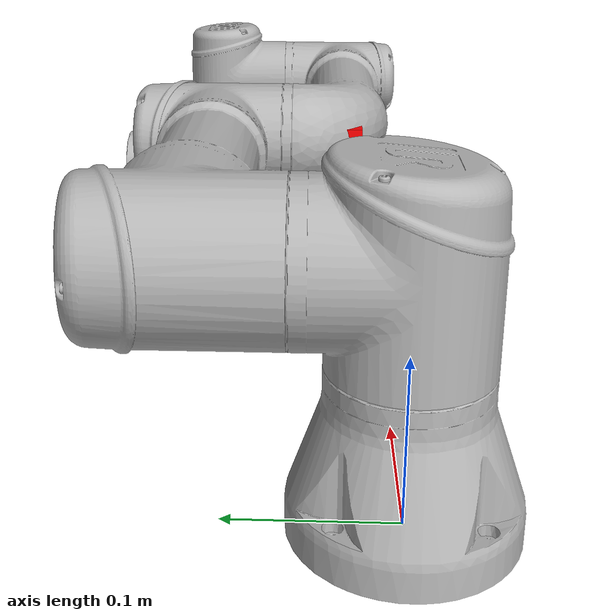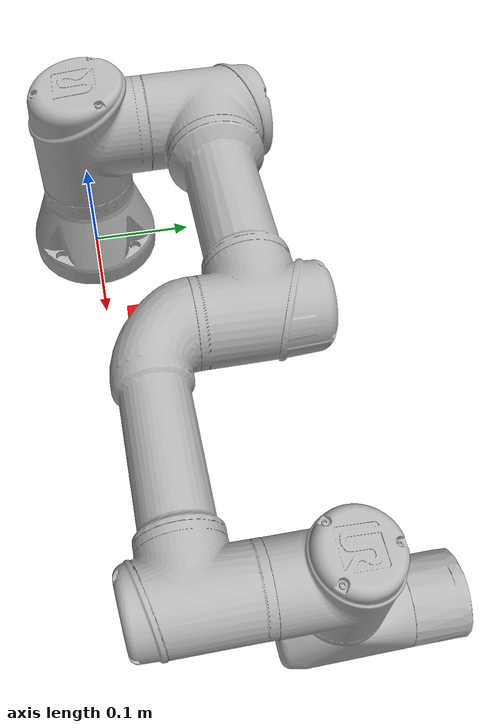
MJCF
<mujoco model="ur3e">
    <compiler angle="radian" meshdir="./mesh/ur3e/collision/" texturedir="./mesh/ur3e/visual/" />

    <size njmax="500" nconmax="100" />
    <option timestep='0.01' gravity='0 0 -9.81'/>
    <default>
        <default class="force-torque">
        <site type="box" size=".01 .01 .02" rgba="1 0 0 1" />
      </default>
    </default>
    <visual>
        <headlight diffuse="0.6 0.6 0.6" ambient="0.3 0.3 0.3" specular="0 0 0" />
        <rgba haze="0.15 0.25 0.35 1" />
        <global offheight="2160" offwidth="3840"/>
        <quality offsamples="8"/>
    </visual>

    <asset>
        <mesh name="base"     file="base.stl" />
        <mesh name="shoulder" file="shoulder.stl" />
        <mesh name="upperarm" file="upperarm.stl" />
        <mesh name="forearm"  file="forearm.stl" />
        <mesh name="wrist1"   file="wrist1.stl" />
        <mesh name="wrist2"   file="wrist2.stl" />
        <mesh name="wrist3"   file="wrist3.stl" />

        <texture type="skybox" builtin="gradient" rgb1="0.3 0.5 0.7" rgb2="0 0 0" width="512" height="3072" />
        <texture type="2d" name="groundplane" builtin="checker" mark="edge" rgb1="0.2 0.3 0.4" rgb2="0.1 0.2 0.3" markrgb="0.8 0.8 0.8" width="300" height="300" />
        <material name="groundplane" texture="groundplane" texuniform="true" texrepeat="5 5" reflectance="0.5" />

    </asset>
    <worldbody>
    <body name="base" pos="0 0 0">
        <geom type="mesh" contype="0" conaffinity="0" group="1" rgba="0.7 0.7 0.7 1" mesh="base" />
        <geom type="mesh" rgba="0.7 0.7 0.7 1" mesh="base" />
        <body name="shoulder_link" pos="0 0 0.152">
            <inertial pos="0 0 0" mass="2" diaginertia="0.00809316 0.00809316 0.005625" />
            <joint name="shoulder_pan_joint" pos="0 0 0" axis="0 0 1" limited="true" range="-3.14159 3.14159" damping="1.0" frictionloss="0.2"/>
            <site name="shoulder_pan_sensor" class="force-torque"/>
            <geom type="mesh" contype="0" conaffinity="0" group="1" rgba="0.7 0.7 0.7 1" mesh="shoulder" />
            <geom type="mesh" rgba="0.7 0.7 0.7 1" mesh="shoulder" />
            <body name="upper_arm_link" pos="0 0.12 0" quat="0.707107 0 0.707107 0">
                <inertial pos="0 0 0.122" mass="3.42" diaginertia="0.0217771 0.0217771 0.00961875" />
                <joint name="shoulder_lift_joint" pos="0 0 0" axis="0 1 0" limited="true" range="-3.14159 3.14159" damping="1.0" frictionloss="0.2"/>
                <site name="shoulder_lift_sensor" class="force-torque"/>
                <geom type="mesh" contype="0" conaffinity="0" group="1" rgba="0.7 0.7 0.7 1" mesh="upperarm" />
                <geom type="mesh" rgba="0.7 0.7 0.7 1" mesh="upperarm" />
                <body name="forearm_link" pos="0 -0.093 0.244">
                    <inertial pos="0 0 0.1065" mass="1.26" diaginertia="0.00653562 0.00653562 0.00354375" />
                    <joint name="elbow_joint" pos="0 0 0" axis="0 1 0" limited="true" range="-3.14159 3.14159" damping="1.0" frictionloss="0.2"/>
                    <site name="elbow_sensor" class="force-torque"/>
                    <geom type="mesh" contype="0" conaffinity="0" group="1" rgba="0.7 0.7 0.7 1" mesh="forearm" />
                    <geom type="mesh" rgba="0.7 0.7 0.7 1" mesh="forearm" />
                    <body name="wrist_1_link" pos="0 0 0.213" quat="0.707107 0 0.707107 0">
                        <inertial pos="0 0 0" quat="0.5 0.5 -0.5 0.5" mass="0.8" diaginertia="0.00225 0.002085 0.002085" />
                        <joint name="wrist_1_joint" pos="0 0 0" axis="0 1 0" limited="true" range="-3.14159 3.14159" damping="1.0" frictionloss="0.2"/>
                        <site name="wrist_1_sensor" class="force-torque"/>
                        <geom type="mesh" contype="0" conaffinity="0" group="1" rgba="0.7 0.7 0.7 1" mesh="wrist1" />
                        <geom type="mesh" rgba="0.7 0.7 0.7 1" mesh="wrist1" />
                        <body name="wrist_2_link" pos="0 0.104 0">
                            <inertial pos="0 0 0" quat="0.5 0.5 -0.5 0.5" mass="0.8" diaginertia="0.00225 0.002085 0.002085" />
                            <joint name="wrist_2_joint" pos="0 0 0" axis="0 0 1" limited="true" range="-3.14159 3.14159" damping="1.0" frictionloss="0.2"/>
                            <site name="wrist_2_sensor" class="force-torque"/>
                            <geom type="mesh" contype="0" conaffinity="0" group="1" rgba="0.7 0.7 0.7 1" mesh="wrist2" />
                            <geom type="mesh" rgba="0.7 0.7 0.7 1" mesh="wrist2" />
                            <body name="wrist_3_link" pos="0 0 0.085">
                                <inertial pos="0 0.000233618 0" quat="0.5 0.5 -0.5 0.5" mass="0.351" diaginertia="0.000991097 0.000918909 0.000912204" />
                                <joint name="wrist_3_joint" pos="0 0 0" axis="0 1 0" limited="true" range="-3.14159 3.14159" damping="1.0" frictionloss="0.2"/>
                                <site name="wrist_3_sensor" class="force-torque"/>
                                <geom type="mesh" contype="0" conaffinity="0" group="1" rgba="0.7 0.7 0.7 1" mesh="wrist3" />
                                <geom type="mesh" rgba="0.7 0.7 0.7 1" mesh="wrist3" />
                                <geom size="0.005 0.005 0.005" pos="0 0.082 0" quat="0.707107 0 0 0.707107" type="box" />
                            </body>
                        </body>
                    </body>
                </body>
            </body>
        </body>
      </body>
    </worldbody>
    <!-- Actuators -->
    <actuator>
      <motor name="shoulder_pan_motor"  joint="shoulder_pan_joint"  ctrllimited="true" ctrlrange="-330 330" />
      <motor name="shoulder_lift_motor" joint="shoulder_lift_joint" ctrllimited="true" ctrlrange="-330 330" />
      <motor name="elbow_motor"         joint="elbow_joint"         ctrllimited="true" ctrlrange="-150 150" />
      <motor name="wrist_1_motor"       joint="wrist_1_joint"       ctrllimited="true" ctrlrange="-54 54" />
      <motor name="wrist_2_motor"       joint="wrist_2_joint"       ctrllimited="true" ctrlrange="-54 54" />
      <motor name="wrist_3_motor"       joint="wrist_3_joint"       ctrllimited="true" ctrlrange="-54 54" />
    </actuator>

    <sensor>
      <torque name="shoulder_lift_torque" site="shoulder_lift_sensor"/>
      <torque name="shoulder_pan_torque"  site="shoulder_pan_sensor" />
      <torque name="elbow_torque"         site="elbow_sensor"        />
      <torque name="wrist_1_torque"       site="wrist_1_sensor"      />
      <torque name="wrist_2_torque"       site="wrist_2_sensor"      />
      <torque name="wrist_3_torque"       site="wrist_3_sensor"      />

      <actuatorfrc name="shoulder_lift_actuatorfrc" actuator="shoulder_lift_motor"/>
      <actuatorfrc name="shoulder_pan_actuatorfrc"  actuator="shoulder_pan_motor" />
      <actuatorfrc name="elbow_actuatorfrc"         actuator="elbow_motor"        />
      <actuatorfrc name="wrist_1_actuatorfrc"       actuator="wrist_1_motor"      />
      <actuatorfrc name="wrist_2_actuatorfrc"       actuator="wrist_2_motor"      />
      <actuatorfrc name="wrist_3_actuatorfrc"       actuator="wrist_3_motor"      />
    </sensor>

    <keyframe>
        <key name="home" qpos='0 0 0 0 0 0' />
    </keyframe>

</mujoco>
